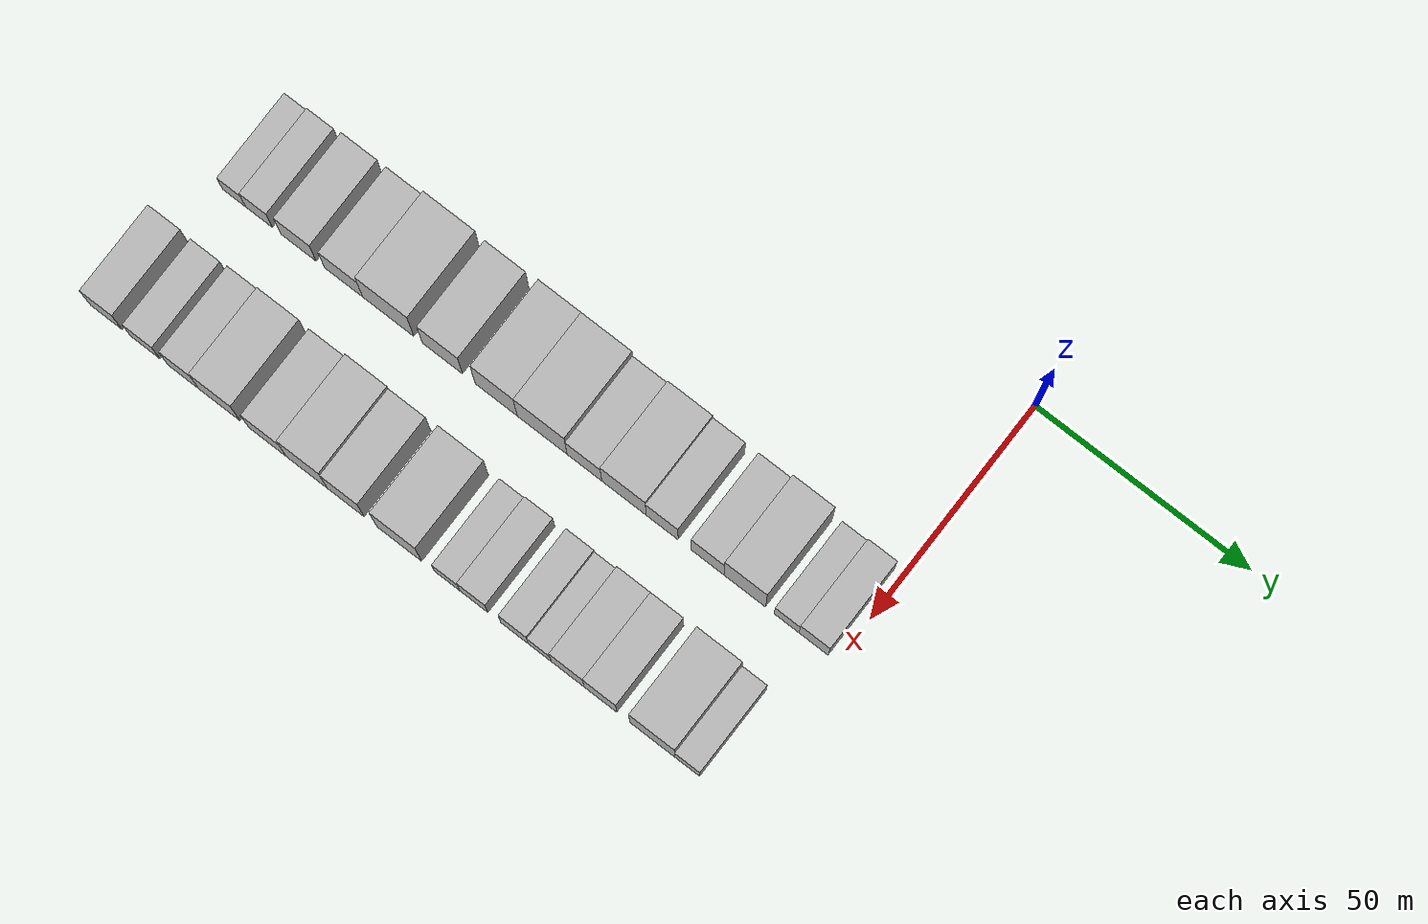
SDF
<sdf version="1.6">
 <world name="default">
  <model name="building_17">
   <static>1</static>
   <pose>50.0000 -141.0140 0 0.000000 0.000000 0.000000</pose>
   <link name="link">
    <pose>0 0 6.00 0 0 0</pose>
    <collision name="collision"><geometry><box><size>20.0000 5.5320 12.0000</size></box></geometry></collision>
    <visual name="visual">
     <cast_shadows>0</cast_shadows>
     <geometry><box><size>20.0000 5.5320 12.0000</size></box></geometry>
     <material>
      <script>
       <uri>model://HANNAS_wall/materials/scripts</uri>
       <uri>model://HANNAS_wall/materials/textures</uri>
       <name>vrc/HANNAS_wall</name>
      </script>
     </material>
    </visual>
   </link>
  </model>
  <model name="building_18">
   <static>1</static>
   <pose>50.0000 -135.1120 0 0.000000 0.000000 0.000000</pose>
   <link name="link">
    <pose>0 0 7.50 0 0 0</pose>
    <collision name="collision"><geometry><box><size>20.0000 6.2721 15.0000</size></box></geometry></collision>
    <visual name="visual">
     <cast_shadows>0</cast_shadows>
     <geometry><box><size>20.0000 6.2721 15.0000</size></box></geometry>
     <material>
      <script>
       <uri>model://HANNAS_wall/materials/scripts</uri>
       <uri>model://HANNAS_wall/materials/textures</uri>
       <name>vrc/HANNAS_wall</name>
      </script>
     </material>
    </visual>
   </link>
  </model>
  <model name="building_19">
   <static>1</static>
   <pose>50.0000 -125.7996 0 0.000000 0.000000 0.000000</pose>
   <link name="link">
    <pose>0 0 9.00 0 0 0</pose>
    <collision name="collision"><geometry><box><size>20.0000 8.3525 18.0000</size></box></geometry></collision>
    <visual name="visual">
     <cast_shadows>0</cast_shadows>
     <geometry><box><size>20.0000 8.3525 18.0000</size></box></geometry>
     <material>
      <script>
       <uri>model://HANNAS_wall/materials/scripts</uri>
       <uri>model://HANNAS_wall/materials/textures</uri>
       <name>vrc/HANNAS_wall</name>
      </script>
     </material>
    </visual>
   </link>
  </model>
  <model name="building_20">
   <static>1</static>
   <pose>50.0000 -115.1325 0 0.000000 0.000000 0.000000</pose>
   <link name="link">
    <pose>0 0 9.00 0 0 0</pose>
    <collision name="collision"><geometry><box><size>20.0000 8.9817 18.0000</size></box></geometry></collision>
    <visual name="visual">
     <cast_shadows>0</cast_shadows>
     <geometry><box><size>20.0000 8.9817 18.0000</size></box></geometry>
     <material>
      <script>
       <uri>model://HANNAS_wall/materials/scripts</uri>
       <uri>model://HANNAS_wall/materials/textures</uri>
       <name>vrc/HANNAS_wall</name>
      </script>
     </material>
    </visual>
   </link>
  </model>
  <model name="building_21">
   <static>1</static>
   <pose>50.0000 -104.6449 0 0.000000 0.000000 0.000000</pose>
   <link name="link">
    <pose>0 0 12.00 0 0 0</pose>
    <collision name="collision"><geometry><box><size>20.0000 11.9935 24.0000</size></box></geometry></collision>
    <visual name="visual">
     <cast_shadows>0</cast_shadows>
     <geometry><box><size>20.0000 11.9935 24.0000</size></box></geometry>
     <material>
      <script>
       <uri>model://HANNAS_wall/materials/scripts</uri>
       <uri>model://HANNAS_wall/materials/textures</uri>
       <name>vrc/HANNAS_wall</name>
      </script>
     </material>
    </visual>
   </link>
  </model>
  <model name="building_22">
   <static>1</static>
   <pose>50.0000 -91.9329 0 0.000000 0.000000 0.000000</pose>
   <link name="link">
    <pose>0 0 10.50 0 0 0</pose>
    <collision name="collision"><geometry><box><size>20.0000 9.4305 21.0000</size></box></geometry></collision>
    <visual name="visual">
     <cast_shadows>0</cast_shadows>
     <geometry><box><size>20.0000 9.4305 21.0000</size></box></geometry>
     <material>
      <script>
       <uri>model://HANNAS_wall/materials/scripts</uri>
       <uri>model://HANNAS_wall/materials/textures</uri>
       <name>vrc/HANNAS_wall</name>
      </script>
     </material>
    </visual>
   </link>
  </model>
  <model name="building_23">
   <static>1</static>
   <pose>50.0000 -79.3031 0 0.000000 0.000000 0.000000</pose>
   <link name="link">
    <pose>0 0 12.00 0 0 0</pose>
    <collision name="collision"><geometry><box><size>20.0000 9.8292 24.0000</size></box></geometry></collision>
    <visual name="visual">
     <cast_shadows>0</cast_shadows>
     <geometry><box><size>20.0000 9.8292 24.0000</size></box></geometry>
     <material>
      <script>
       <uri>model://HANNAS_wall/materials/scripts</uri>
       <uri>model://HANNAS_wall/materials/textures</uri>
       <name>vrc/HANNAS_wall</name>
      </script>
     </material>
    </visual>
   </link>
  </model>
  <model name="building_24">
   <static>1</static>
   <pose>50.0000 -68.5681 0 0.000000 0.000000 0.000000</pose>
   <link name="link">
    <pose>0 0 12.00 0 0 0</pose>
    <collision name="collision"><geometry><box><size>20.0000 11.6407 24.0000</size></box></geometry></collision>
    <visual name="visual">
     <cast_shadows>0</cast_shadows>
     <geometry><box><size>20.0000 11.6407 24.0000</size></box></geometry>
     <material>
      <script>
       <uri>model://HANNAS_wall/materials/scripts</uri>
       <uri>model://HANNAS_wall/materials/textures</uri>
       <name>vrc/HANNAS_wall</name>
      </script>
     </material>
    </visual>
   </link>
  </model>
  <model name="building_25">
   <static>1</static>
   <pose>50.0000 -58.7035 0 0.000000 0.000000 0.000000</pose>
   <link name="link">
    <pose>0 0 9.00 0 0 0</pose>
    <collision name="collision"><geometry><box><size>20.0000 8.0885 18.0000</size></box></geometry></collision>
    <visual name="visual">
     <cast_shadows>0</cast_shadows>
     <geometry><box><size>20.0000 8.0885 18.0000</size></box></geometry>
     <material>
      <script>
       <uri>model://HANNAS_wall/materials/scripts</uri>
       <uri>model://HANNAS_wall/materials/textures</uri>
       <name>vrc/HANNAS_wall</name>
      </script>
     </material>
    </visual>
   </link>
  </model>
  <model name="building_26">
   <static>1</static>
   <pose>50.0000 -49.4943 0 0.000000 0.000000 0.000000</pose>
   <link name="link">
    <pose>0 0 10.50 0 0 0</pose>
    <collision name="collision"><geometry><box><size>20.0000 10.3299 21.0000</size></box></geometry></collision>
    <visual name="visual">
     <cast_shadows>0</cast_shadows>
     <geometry><box><size>20.0000 10.3299 21.0000</size></box></geometry>
     <material>
      <script>
       <uri>model://HANNAS_wall/materials/scripts</uri>
       <uri>model://HANNAS_wall/materials/textures</uri>
       <name>vrc/HANNAS_wall</name>
      </script>
     </material>
    </visual>
   </link>
  </model>
  <model name="building_27">
   <static>1</static>
   <pose>50.0000 -40.6053 0 0.000000 0.000000 0.000000</pose>
   <link name="link">
    <pose>0 0 9.00 0 0 0</pose>
    <collision name="collision"><geometry><box><size>20.0000 7.4480 18.0000</size></box></geometry></collision>
    <visual name="visual">
     <cast_shadows>0</cast_shadows>
     <geometry><box><size>20.0000 7.4480 18.0000</size></box></geometry>
     <material>
      <script>
       <uri>model://HANNAS_wall/materials/scripts</uri>
       <uri>model://HANNAS_wall/materials/textures</uri>
       <name>vrc/HANNAS_wall</name>
      </script>
     </material>
    </visual>
   </link>
  </model>
  <model name="building_28">
   <static>1</static>
   <pose>50.0000 -30.0439 0 0.000000 0.000000 0.000000</pose>
   <link name="link">
    <pose>0 0 9.00 0 0 0</pose>
    <collision name="collision"><geometry><box><size>20.0000 7.6748 18.0000</size></box></geometry></collision>
    <visual name="visual">
     <cast_shadows>0</cast_shadows>
     <geometry><box><size>20.0000 7.6748 18.0000</size></box></geometry>
     <material>
      <script>
       <uri>model://HANNAS_wall/materials/scripts</uri>
       <uri>model://HANNAS_wall/materials/textures</uri>
       <name>vrc/HANNAS_wall</name>
      </script>
     </material>
    </visual>
   </link>
  </model>
  <model name="building_29">
   <static>1</static>
   <pose>50.0000 -21.3962 0 0.000000 0.000000 0.000000</pose>
   <link name="link">
    <pose>0 0 12.00 0 0 0</pose>
    <collision name="collision"><geometry><box><size>20.0000 9.6205 24.0000</size></box></geometry></collision>
    <visual name="visual">
     <cast_shadows>0</cast_shadows>
     <geometry><box><size>20.0000 9.6205 24.0000</size></box></geometry>
     <material>
      <script>
       <uri>model://HANNAS_wall/materials/scripts</uri>
       <uri>model://HANNAS_wall/materials/textures</uri>
       <name>vrc/HANNAS_wall</name>
      </script>
     </material>
    </visual>
   </link>
  </model>
  <model name="building_30">
   <static>1</static>
   <pose>50.0000 -11.6891 0 0.000000 0.000000 0.000000</pose>
   <link name="link">
    <pose>0 0 6.00 0 0 0</pose>
    <collision name="collision"><geometry><box><size>20.0000 5.7937 12.0000</size></box></geometry></collision>
    <visual name="visual">
     <cast_shadows>0</cast_shadows>
     <geometry><box><size>20.0000 5.7937 12.0000</size></box></geometry>
     <material>
      <script>
       <uri>model://HANNAS_wall/materials/scripts</uri>
       <uri>model://HANNAS_wall/materials/textures</uri>
       <name>vrc/HANNAS_wall</name>
      </script>
     </material>
    </visual>
   </link>
  </model>
  <model name="building_31">
   <static>1</static>
   <pose>50.0000 -5.4280 0 0.000000 0.000000 0.000000</pose>
   <link name="link">
    <pose>0 0 7.50 0 0 0</pose>
    <collision name="collision"><geometry><box><size>20.0000 6.7285 15.0000</size></box></geometry></collision>
    <visual name="visual">
     <cast_shadows>0</cast_shadows>
     <geometry><box><size>20.0000 6.7285 15.0000</size></box></geometry>
     <material>
      <script>
       <uri>model://HANNAS_wall/materials/scripts</uri>
       <uri>model://HANNAS_wall/materials/textures</uri>
       <name>vrc/HANNAS_wall</name>
      </script>
     </material>
    </visual>
   </link>
  </model>
  <model name="building_78">
   <static>1</static>
   <pose>82.0000 -145.7828 0 0.000000 0.000000 0.000000</pose>
   <link name="link">
    <pose>0 0 9.00 0 0 0</pose>
    <collision name="collision"><geometry><box><size>20.0000 7.5109 18.0000</size></box></geometry></collision>
    <visual name="visual">
     <cast_shadows>0</cast_shadows>
     <geometry><box><size>20.0000 7.5109 18.0000</size></box></geometry>
     <material>
      <script>
       <uri>model://HANNAS_wall/materials/scripts</uri>
       <uri>model://HANNAS_wall/materials/textures</uri>
       <name>vrc/HANNAS_wall</name>
      </script>
     </material>
    </visual>
   </link>
  </model>
  <model name="building_79">
   <static>1</static>
   <pose>82.0000 -136.5919 0 0.000000 0.000000 0.000000</pose>
   <link name="link">
    <pose>0 0 7.50 0 0 0</pose>
    <collision name="collision"><geometry><box><size>20.0000 6.8709 15.0000</size></box></geometry></collision>
    <visual name="visual">
     <cast_shadows>0</cast_shadows>
     <geometry><box><size>20.0000 6.8709 15.0000</size></box></geometry>
     <material>
      <script>
       <uri>model://HANNAS_wall/materials/scripts</uri>
       <uri>model://HANNAS_wall/materials/textures</uri>
       <name>vrc/HANNAS_wall</name>
      </script>
     </material>
    </visual>
   </link>
  </model>
  <model name="building_80">
   <static>1</static>
   <pose>82.0000 -127.5436 0 0.000000 0.000000 0.000000</pose>
   <link name="link">
    <pose>0 0 9.00 0 0 0</pose>
    <collision name="collision"><geometry><box><size>20.0000 7.2256 18.0000</size></box></geometry></collision>
    <visual name="visual">
     <cast_shadows>0</cast_shadows>
     <geometry><box><size>20.0000 7.2256 18.0000</size></box></geometry>
     <material>
      <script>
       <uri>model://HANNAS_wall/materials/scripts</uri>
       <uri>model://HANNAS_wall/materials/textures</uri>
       <name>vrc/HANNAS_wall</name>
      </script>
     </material>
    </visual>
   </link>
  </model>
  <model name="building_81">
   <static>1</static>
   <pose>82.0000 -119.0979 0 0.000000 0.000000 0.000000</pose>
   <link name="link">
    <pose>0 0 10.50 0 0 0</pose>
    <collision name="collision"><geometry><box><size>20.0000 9.6659 21.0000</size></box></geometry></collision>
    <visual name="visual">
     <cast_shadows>0</cast_shadows>
     <geometry><box><size>20.0000 9.6659 21.0000</size></box></geometry>
     <material>
      <script>
       <uri>model://HANNAS_wall/materials/scripts</uri>
       <uri>model://HANNAS_wall/materials/textures</uri>
       <name>vrc/HANNAS_wall</name>
      </script>
     </material>
    </visual>
   </link>
  </model>
  <model name="building_82">
   <static>1</static>
   <pose>82.0000 -107.8352 0 0.000000 0.000000 0.000000</pose>
   <link name="link">
    <pose>0 0 9.00 0 0 0</pose>
    <collision name="collision"><geometry><box><size>20.0000 8.8596 18.0000</size></box></geometry></collision>
    <visual name="visual">
     <cast_shadows>0</cast_shadows>
     <geometry><box><size>20.0000 8.8596 18.0000</size></box></geometry>
     <material>
      <script>
       <uri>model://HANNAS_wall/materials/scripts</uri>
       <uri>model://HANNAS_wall/materials/textures</uri>
       <name>vrc/HANNAS_wall</name>
      </script>
     </material>
    </visual>
   </link>
  </model>
  <model name="building_83">
   <static>1</static>
   <pose>82.0000 -98.5753 0 0.000000 0.000000 0.000000</pose>
   <link name="link">
    <pose>0 0 12.00 0 0 0</pose>
    <collision name="collision"><geometry><box><size>20.0000 9.6600 24.0000</size></box></geometry></collision>
    <visual name="visual">
     <cast_shadows>0</cast_shadows>
     <geometry><box><size>20.0000 9.6600 24.0000</size></box></geometry>
     <material>
      <script>
       <uri>model://HANNAS_wall/materials/scripts</uri>
       <uri>model://HANNAS_wall/materials/textures</uri>
       <name>vrc/HANNAS_wall</name>
      </script>
     </material>
    </visual>
   </link>
  </model>
  <model name="building_84">
   <static>1</static>
   <pose>82.0000 -89.4566 0 0.000000 0.000000 0.000000</pose>
   <link name="link">
    <pose>0 0 10.50 0 0 0</pose>
    <collision name="collision"><geometry><box><size>20.0000 8.5774 21.0000</size></box></geometry></collision>
    <visual name="visual">
     <cast_shadows>0</cast_shadows>
     <geometry><box><size>20.0000 8.5774 21.0000</size></box></geometry>
     <material>
      <script>
       <uri>model://HANNAS_wall/materials/scripts</uri>
       <uri>model://HANNAS_wall/materials/textures</uri>
       <name>vrc/HANNAS_wall</name>
      </script>
     </material>
    </visual>
   </link>
  </model>
  <model name="building_85">
   <static>1</static>
   <pose>82.0000 -76.9365 0 0.000000 0.000000 0.000000</pose>
   <link name="link">
    <pose>0 0 12.00 0 0 0</pose>
    <collision name="collision"><geometry><box><size>20.0000 10.4627 24.0000</size></box></geometry></collision>
    <visual name="visual">
     <cast_shadows>0</cast_shadows>
     <geometry><box><size>20.0000 10.4627 24.0000</size></box></geometry>
     <material>
      <script>
       <uri>model://HANNAS_wall/materials/scripts</uri>
       <uri>model://HANNAS_wall/materials/textures</uri>
       <name>vrc/HANNAS_wall</name>
      </script>
     </material>
    </visual>
   </link>
  </model>
  <model name="building_86">
   <static>1</static>
   <pose>82.0000 -65.7553 0 0.000000 0.000000 0.000000</pose>
   <link name="link">
    <pose>0 0 6.00 0 0 0</pose>
    <collision name="collision"><geometry><box><size>20.0000 5.8996 12.0000</size></box></geometry></collision>
    <visual name="visual">
     <cast_shadows>0</cast_shadows>
     <geometry><box><size>20.0000 5.8996 12.0000</size></box></geometry>
     <material>
      <script>
       <uri>model://HANNAS_wall/materials/scripts</uri>
       <uri>model://HANNAS_wall/materials/textures</uri>
       <name>vrc/HANNAS_wall</name>
      </script>
     </material>
    </visual>
   </link>
  </model>
  <model name="building_87">
   <static>1</static>
   <pose>82.0000 -59.5235 0 0.000000 0.000000 0.000000</pose>
   <link name="link">
    <pose>0 0 7.50 0 0 0</pose>
    <collision name="collision"><geometry><box><size>20.0000 6.5640 15.0000</size></box></geometry></collision>
    <visual name="visual">
     <cast_shadows>0</cast_shadows>
     <geometry><box><size>20.0000 6.5640 15.0000</size></box></geometry>
     <material>
      <script>
       <uri>model://HANNAS_wall/materials/scripts</uri>
       <uri>model://HANNAS_wall/materials/textures</uri>
       <name>vrc/HANNAS_wall</name>
      </script>
     </material>
    </visual>
   </link>
  </model>
  <model name="building_88">
   <static>1</static>
   <pose>82.0000 -50.0163 0 0.000000 0.000000 0.000000</pose>
   <link name="link">
    <pose>0 0 7.50 0 0 0</pose>
    <collision name="collision"><geometry><box><size>20.0000 6.4505 15.0000</size></box></geometry></collision>
    <visual name="visual">
     <cast_shadows>0</cast_shadows>
     <geometry><box><size>20.0000 6.4505 15.0000</size></box></geometry>
     <material>
      <script>
       <uri>model://HANNAS_wall/materials/scripts</uri>
       <uri>model://HANNAS_wall/materials/textures</uri>
       <name>vrc/HANNAS_wall</name>
      </script>
     </material>
    </visual>
   </link>
  </model>
  <model name="building_89">
   <static>1</static>
   <pose>82.0000 -44.1554 0 0.000000 0.000000 0.000000</pose>
   <link name="link">
    <pose>0 0 6.00 0 0 0</pose>
    <collision name="collision"><geometry><box><size>20.0000 5.2712 12.0000</size></box></geometry></collision>
    <visual name="visual">
     <cast_shadows>0</cast_shadows>
     <geometry><box><size>20.0000 5.2712 12.0000</size></box></geometry>
     <material>
      <script>
       <uri>model://HANNAS_wall/materials/scripts</uri>
       <uri>model://HANNAS_wall/materials/textures</uri>
       <name>vrc/HANNAS_wall</name>
      </script>
     </material>
    </visual>
   </link>
  </model>
  <model name="building_90">
   <static>1</static>
   <pose>82.0000 -37.6876 0 0.000000 0.000000 0.000000</pose>
   <link name="link">
    <pose>0 0 9.00 0 0 0</pose>
    <collision name="collision"><geometry><box><size>20.0000 7.6645 18.0000</size></box></geometry></collision>
    <visual name="visual">
     <cast_shadows>0</cast_shadows>
     <geometry><box><size>20.0000 7.6645 18.0000</size></box></geometry>
     <material>
      <script>
       <uri>model://HANNAS_wall/materials/scripts</uri>
       <uri>model://HANNAS_wall/materials/textures</uri>
       <name>vrc/HANNAS_wall</name>
      </script>
     </material>
    </visual>
   </link>
  </model>
  <model name="building_91">
   <static>1</static>
   <pose>82.0000 -30.0669 0 0.000000 0.000000 0.000000</pose>
   <link name="link">
    <pose>0 0 9.00 0 0 0</pose>
    <collision name="collision"><geometry><box><size>20.0000 7.5770 18.0000</size></box></geometry></collision>
    <visual name="visual">
     <cast_shadows>0</cast_shadows>
     <geometry><box><size>20.0000 7.5770 18.0000</size></box></geometry>
     <material>
      <script>
       <uri>model://HANNAS_wall/materials/scripts</uri>
       <uri>model://HANNAS_wall/materials/textures</uri>
       <name>vrc/HANNAS_wall</name>
      </script>
     </material>
    </visual>
   </link>
  </model>
  <model name="building_92">
   <static>1</static>
   <pose>82.0000 -18.0689 0 0.000000 0.000000 0.000000</pose>
   <link name="link">
    <pose>0 0 10.50 0 0 0</pose>
    <collision name="collision"><geometry><box><size>20.0000 10.4189 21.0000</size></box></geometry></collision>
    <visual name="visual">
     <cast_shadows>0</cast_shadows>
     <geometry><box><size>20.0000 10.4189 21.0000</size></box></geometry>
     <material>
      <script>
       <uri>model://HANNAS_wall/materials/scripts</uri>
       <uri>model://HANNAS_wall/materials/textures</uri>
       <name>vrc/HANNAS_wall</name>
      </script>
     </material>
    </visual>
   </link>
  </model>
  <model name="building_93">
   <static>1</static>
   <pose>82.0000 -9.9806 0 0.000000 0.000000 0.000000</pose>
   <link name="link">
    <pose>0 0 6.00 0 0 0</pose>
    <collision name="collision"><geometry><box><size>20.0000 5.7576 12.0000</size></box></geometry></collision>
    <visual name="visual">
     <cast_shadows>0</cast_shadows>
     <geometry><box><size>20.0000 5.7576 12.0000</size></box></geometry>
     <material>
      <script>
       <uri>model://HANNAS_wall/materials/scripts</uri>
       <uri>model://HANNAS_wall/materials/textures</uri>
       <name>vrc/HANNAS_wall</name>
      </script>
     </material>
    </visual>
   </link>
  </model>
 </world>
</sdf>
